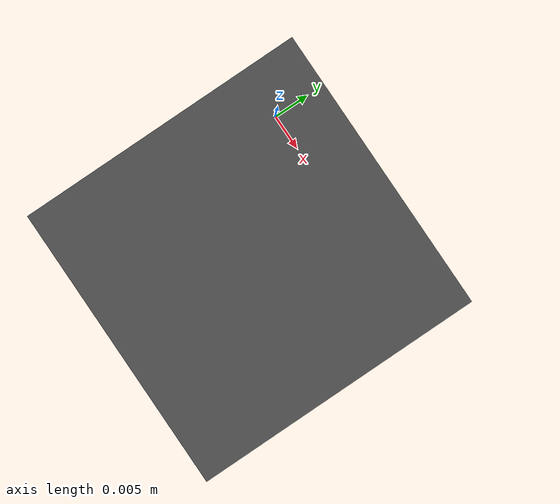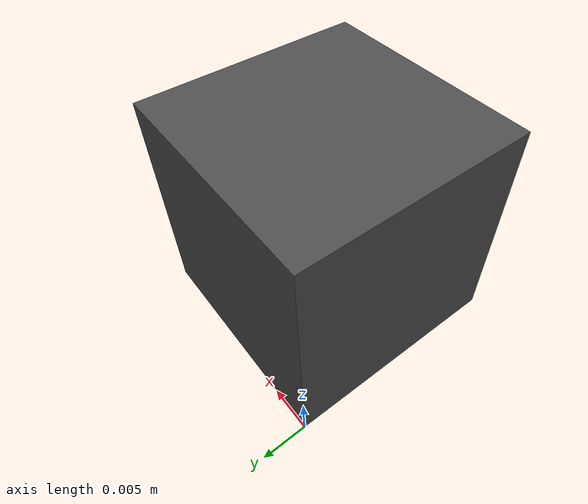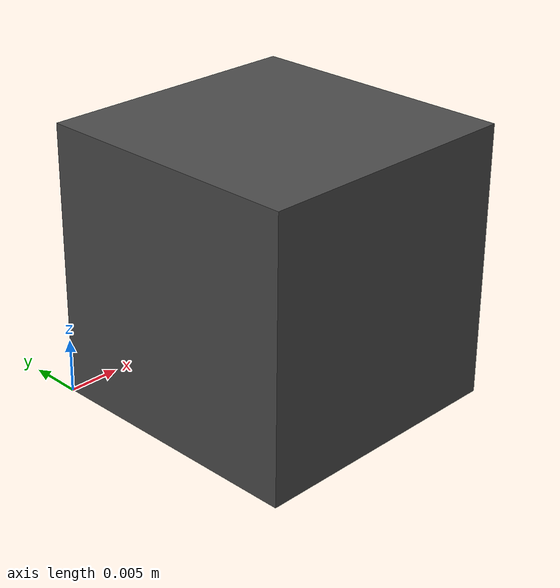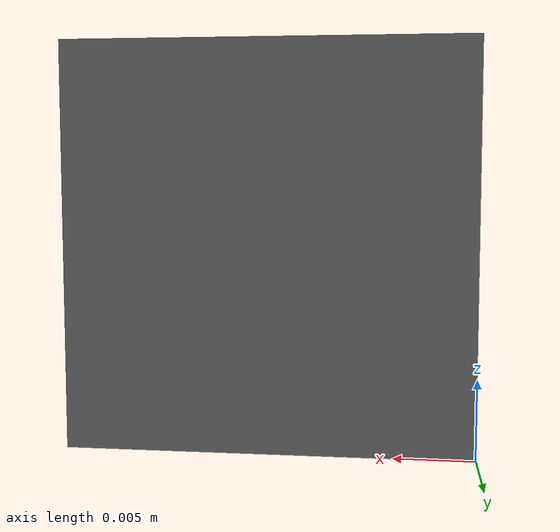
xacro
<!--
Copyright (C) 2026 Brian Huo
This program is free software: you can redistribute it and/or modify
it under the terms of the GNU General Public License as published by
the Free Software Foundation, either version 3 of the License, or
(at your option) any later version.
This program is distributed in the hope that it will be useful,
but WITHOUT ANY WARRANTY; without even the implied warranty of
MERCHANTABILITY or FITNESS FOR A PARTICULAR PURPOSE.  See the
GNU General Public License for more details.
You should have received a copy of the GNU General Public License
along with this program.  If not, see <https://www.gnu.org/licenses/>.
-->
<?xml version="1.0"?>

<robot xmlns:xacro="http://www.ros.org/wiki/xacro" name="block_scene">

    <link name="base_link" />

    <xacro:include filename="$(find morpheus_description)/urdf/macros/block.xacro" />
    <xacro:block
        prefix=""
        parent="base_link"
        x="0.0"
        y="0.0"
        z="0.0"
        scale="0.0254"
    />

</robot>

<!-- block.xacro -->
<robot name="block" xmlns:xacro="http://www.ros.org/wiki/xacro">
  <xacro:macro name="block"
    params="x:=0 y:=0 z:=0 R:=0 P:=0 Y:=0 scale:=0.0254 prefix parent">

    <link name="${prefix}block">
        <inertial>
            <origin rpy="0 0 0" xyz="0.0 0.0 0.0125"/>
            <mass value="1"/>
            <inertia ixx="1" ixy="0" ixz="0" iyy="1" iyz="0" izz="1"/>
        </inertial>
        <visual>
            <origin rpy="1.57079632679 0 0" xyz="0 0 0"/>
            <geometry>
                <mesh filename="file://$(find morpheus_description)/meshes/visual/block.obj" scale="${scale} ${scale} ${scale}"/>
            </geometry>
            <material name="grey">
                <color rgba="0.3 0.3 0.3 1" />
            </material>
        </visual>
        <collision>
            <origin rpy="1.57079632679 0 0" xyz="0 0 0" />
            <geometry>
                <mesh filename="file://$(find morpheus_description)/meshes/collision/block.obj" scale="${scale} ${scale} ${scale}"/>
            </geometry>
        </collision>
    </link>

    <joint name="${prefix}block_joint" type="fixed">
        <parent link="${parent}" />
        <child link="${prefix}block" />
        <origin xyz="${x} ${y} ${z}" rpy="${R} ${P} ${Y}" />
    </joint>

  </xacro:macro>

</robot>
